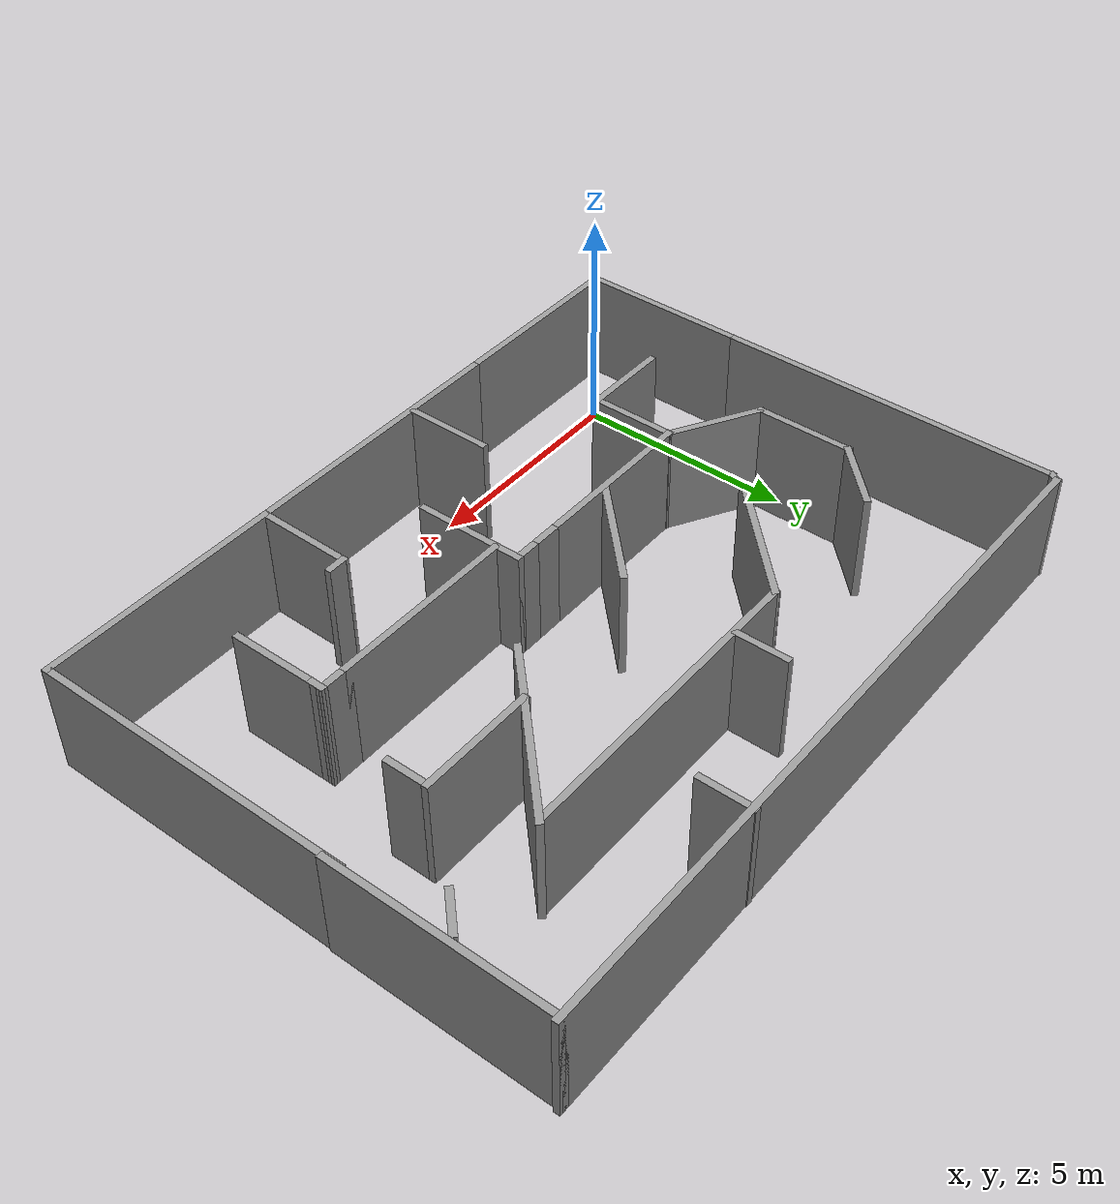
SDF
<?xml version='1.0'?>
<sdf version='1.7'>
  <model name='maze'>
    <pose>6.47293 4.7131 0 0 -0 0</pose>
    <link name='Wall_10'>
      <collision name='Wall_10_Collision'>
        <geometry>
          <box>
            <size>3.9616 0.15 2.5</size>
          </box>
        </geometry>
        <pose>0 0 1.25 0 -0 0</pose>
      </collision>
      <visual name='Wall_10_Visual'>
        <pose>0 0 1.25 0 -0 0</pose>
        <geometry>
          <box>
            <size>3.9616 0.15 2.5</size>
          </box>
        </geometry>
        <material>
          <script>
            <uri>file://media/materials/scripts/gazebo.material</uri>
            <name>Gazebo/Grey</name>
          </script>
          <ambient>1 1 1 1</ambient>
        </material>
        <meta>
          <layer>0</layer>
        </meta>
      </visual>
      <pose>-7.92933 -3.89369 0 0 -0 1.5708</pose>
    </link>
    <link name='Wall_14'>
      <collision name='Wall_14_Collision'>
        <geometry>
          <box>
            <size>6.5 0.15 2.5</size>
          </box>
        </geometry>
        <pose>0 0 1.25 0 -0 0</pose>
      </collision>
      <visual name='Wall_14_Visual'>
        <pose>0 0 1.25 0 -0 0</pose>
        <geometry>
          <box>
            <size>6.5 0.15 2.5</size>
          </box>
        </geometry>
        <material>
          <script>
            <uri>file://media/materials/scripts/gazebo.material</uri>
            <name>Gazebo/Grey</name>
          </script>
          <ambient>1 1 1 1</ambient>
        </material>
        <meta>
          <layer>0</layer>
        </meta>
      </visual>
      <pose>-0.654331 -5.79949 0 0 -0 0</pose>
    </link>
    <link name='Wall_15'>
      <collision name='Wall_15_Collision'>
        <geometry>
          <box>
            <size>2.2418 0.15 2.5</size>
          </box>
        </geometry>
        <pose>0 0 1.25 0 -0 0</pose>
      </collision>
      <visual name='Wall_15_Visual'>
        <pose>0 0 1.25 0 -0 0</pose>
        <geometry>
          <box>
            <size>2.2418 0.15 2.5</size>
          </box>
        </geometry>
        <material>
          <script>
            <uri>file://media/materials/scripts/gazebo.material</uri>
            <name>Gazebo/Grey</name>
          </script>
          <ambient>1 1 1 1</ambient>
        </material>
        <meta>
          <layer>0</layer>
        </meta>
      </visual>
      <pose>2.53515 -4.75369 0 0 -0 1.55695</pose>
    </link>
    <link name='Wall_17'>
      <collision name='Wall_17_Collision'>
        <geometry>
          <box>
            <size>2 0.15 2.5</size>
          </box>
        </geometry>
        <pose>0 0 1.25 0 -0 0</pose>
      </collision>
      <visual name='Wall_17_Visual'>
        <pose>0 0 1.25 0 -0 0</pose>
        <geometry>
          <box>
            <size>2 0.15 2.5</size>
          </box>
        </geometry>
        <material>
          <script>
            <uri>file://media/materials/scripts/gazebo.material</uri>
            <name>Gazebo/Grey</name>
          </script>
          <ambient>1 1 1 1</ambient>
        </material>
        <meta>
          <layer>0</layer>
        </meta>
      </visual>
      <pose>-5.26776 -2.96823 0 0 -0 0</pose>
    </link>
    <link name='Wall_19'>
      <collision name='Wall_19_Collision'>
        <geometry>
          <box>
            <size>1.98933 0.15 2.5</size>
          </box>
        </geometry>
        <pose>0 0 1.25 0 -0 0</pose>
      </collision>
      <visual name='Wall_19_Visual'>
        <pose>0 0 1.25 0 -0 0</pose>
        <geometry>
          <box>
            <size>1.98933 0.15 2.5</size>
          </box>
        </geometry>
        <material>
          <script>
            <uri>file://media/materials/scripts/gazebo.material</uri>
            <name>Gazebo/Grey</name>
          </script>
          <ambient>1 1 1 1</ambient>
        </material>
        <meta>
          <layer>0</layer>
        </meta>
      </visual>
      <pose>-4.32954 -2.06179 0 0 -0 1.5708</pose>
    </link>
    <link name='Wall_20'>
      <collision name='Wall_20_Collision'>
        <geometry>
          <box>
            <size>3.75 0.15 2.5</size>
          </box>
        </geometry>
        <pose>0 0 1.25 0 -0 0</pose>
      </collision>
      <visual name='Wall_20_Visual'>
        <pose>0 0 1.25 0 -0 0</pose>
        <geometry>
          <box>
            <size>3.75 0.15 2.5</size>
          </box>
        </geometry>
        <material>
          <script>
            <uri>file://media/materials/scripts/gazebo.material</uri>
            <name>Gazebo/Grey</name>
          </script>
          <ambient>1 1 1 1</ambient>
        </material>
        <meta>
          <layer>0</layer>
        </meta>
      </visual>
      <pose>-2.51631 -1.15535 0 0 -0 0</pose>
    </link>
    <link name='Wall_22'>
      <collision name='Wall_22_Collision'>
        <geometry>
          <box>
            <size>2 0.15 2.5</size>
          </box>
        </geometry>
        <pose>0 0 1.25 0 -0 0</pose>
      </collision>
      <visual name='Wall_22_Visual'>
        <pose>0 0 1.25 0 -0 0</pose>
        <geometry>
          <box>
            <size>2 0.15 2.5</size>
          </box>
        </geometry>
        <material>
          <script>
            <uri>file://media/materials/scripts/gazebo.material</uri>
            <name>Gazebo/Grey</name>
          </script>
          <ambient>1 1 1 1</ambient>
        </material>
        <meta>
          <layer>0</layer>
        </meta>
      </visual>
      <pose>-1.69825 -4.80527 0 0 -0 1.5708</pose>
    </link>
    <link name='Wall_24'>
      <collision name='Wall_24_Collision'>
        <geometry>
          <box>
            <size>0.75 0.15 2.5</size>
          </box>
        </geometry>
        <pose>0 0 1.25 0 -0 0</pose>
      </collision>
      <visual name='Wall_24_Visual'>
        <pose>0 0 1.25 0 -0 0</pose>
        <geometry>
          <box>
            <size>0.75 0.15 2.5</size>
          </box>
        </geometry>
        <material>
          <script>
            <uri>file://media/materials/scripts/gazebo.material</uri>
            <name>Gazebo/Grey</name>
          </script>
          <ambient>1 1 1 1</ambient>
        </material>
        <meta>
          <layer>0</layer>
        </meta>
      </visual>
      <pose>-0.416314 -1.15535 0 0 -0 0</pose>
    </link>
    <link name='Wall_25'>
      <collision name='Wall_25_Collision'>
        <geometry>
          <box>
            <size>0.75 0.15 2.5</size>
          </box>
        </geometry>
        <pose>0 0 1.25 0 -0 0</pose>
      </collision>
      <visual name='Wall_25_Visual'>
        <pose>0 0 1.25 0 -0 0</pose>
        <geometry>
          <box>
            <size>0.75 0.15 2.5</size>
          </box>
        </geometry>
        <material>
          <script>
            <uri>file://media/materials/scripts/gazebo.material</uri>
            <name>Gazebo/Grey</name>
          </script>
          <ambient>1 1 1 1</ambient>
        </material>
        <meta>
          <layer>0</layer>
        </meta>
      </visual>
      <pose>0.183686 -1.15535 0 0 -0 0</pose>
    </link>
    <link name='Wall_26'>
      <collision name='Wall_26_Collision'>
        <geometry>
          <box>
            <size>2.5 0.15 2.5</size>
          </box>
        </geometry>
        <pose>0 0 1.25 0 -0 0</pose>
      </collision>
      <visual name='Wall_26_Visual'>
        <pose>0 0 1.25 0 -0 0</pose>
        <geometry>
          <box>
            <size>2.5 0.15 2.5</size>
          </box>
        </geometry>
        <material>
          <script>
            <uri>file://media/materials/scripts/gazebo.material</uri>
            <name>Gazebo/Grey</name>
          </script>
          <ambient>1 1 1 1</ambient>
        </material>
        <meta>
          <layer>0</layer>
        </meta>
      </visual>
      <pose>0.483686 -2.33035 0 0 -0 -1.5708</pose>
    </link>
    <link name='Wall_29'>
      <collision name='Wall_29_Collision'>
        <geometry>
          <box>
            <size>4.25011 0.15 2.5</size>
          </box>
        </geometry>
        <pose>0 0 1.25 0 -0 0</pose>
      </collision>
      <visual name='Wall_29_Visual'>
        <pose>0 0 1.25 0 -0 0</pose>
        <geometry>
          <box>
            <size>4.25011 0.15 2.5</size>
          </box>
        </geometry>
        <material>
          <script>
            <uri>file://media/materials/scripts/gazebo.material</uri>
            <name>Gazebo/Grey</name>
          </script>
          <ambient>1 1 1 1</ambient>
        </material>
        <meta>
          <layer>0</layer>
        </meta>
      </visual>
      <pose>2.56394 -1.68717 0 0 -0 0</pose>
    </link>
    <link name='Wall_32'>
      <collision name='Wall_32_Collision'>
        <geometry>
          <box>
            <size>0.5 0.15 2.5</size>
          </box>
        </geometry>
        <pose>0 0 1.25 0 -0 0</pose>
      </collision>
      <visual name='Wall_32_Visual'>
        <pose>0 0 1.25 0 -0 0</pose>
        <geometry>
          <box>
            <size>0.5 0.15 2.5</size>
          </box>
        </geometry>
        <material>
          <script>
            <uri>file://media/materials/scripts/gazebo.material</uri>
            <name>Gazebo/Grey</name>
          </script>
          <ambient>1 1 1 1</ambient>
        </material>
        <meta>
          <layer>0</layer>
        </meta>
      </visual>
      <pose>2.72463 -3.70789 0 0 -0 0</pose>
    </link>
    <link name='Wall_36'>
      <collision name='Wall_36_Collision'>
        <geometry>
          <box>
            <size>2 0.15 2.5</size>
          </box>
        </geometry>
        <pose>0 0 1.25 0 -0 0</pose>
      </collision>
      <visual name='Wall_36_Visual'>
        <pose>0 0 1.25 0 -0 0</pose>
        <geometry>
          <box>
            <size>2 0.15 2.5</size>
          </box>
        </geometry>
        <material>
          <script>
            <uri>file://media/materials/scripts/gazebo.material</uri>
            <name>Gazebo/Grey</name>
          </script>
          <ambient>1 1 1 1</ambient>
        </material>
        <meta>
          <layer>0</layer>
        </meta>
      </visual>
      <pose>5.21014 -2.84058 0 0 -0 1.5708</pose>
    </link>
    <link name='Wall_39'>
      <collision name='Wall_39_Collision'>
        <geometry>
          <box>
            <size>0.75 0.15 2.5</size>
          </box>
        </geometry>
        <pose>0 0 1.25 0 -0 0</pose>
      </collision>
      <visual name='Wall_39_Visual'>
        <pose>0 0 1.25 0 -0 0</pose>
        <geometry>
          <box>
            <size>0.75 0.15 2.5</size>
          </box>
        </geometry>
        <material>
          <script>
            <uri>file://media/materials/scripts/gazebo.material</uri>
            <name>Gazebo/Grey</name>
          </script>
          <ambient>1 1 1 1</ambient>
        </material>
        <meta>
          <layer>0</layer>
        </meta>
      </visual>
      <pose>4.91394 -1.68717 0 0 -0 0</pose>
    </link>
    <link name='Wall_40'>
      <collision name='Wall_40_Collision'>
        <geometry>
          <box>
            <size>0.378442 0.15 2.5</size>
          </box>
        </geometry>
        <pose>0 0 1.25 0 -0 0</pose>
      </collision>
      <visual name='Wall_40_Visual'>
        <pose>0 0 1.25 0 -0 0</pose>
        <geometry>
          <box>
            <size>0.378442 0.15 2.5</size>
          </box>
        </geometry>
        <material>
          <script>
            <uri>file://media/materials/scripts/gazebo.material</uri>
            <name>Gazebo/Grey</name>
          </script>
          <ambient>1 1 1 1</ambient>
        </material>
        <meta>
          <layer>0</layer>
        </meta>
      </visual>
      <pose>5.21204 -1.80137 0 0 -0 -1.58743</pose>
    </link>
    <link name='Wall_42'>
      <collision name='Wall_42_Collision'>
        <geometry>
          <box>
            <size>5.5 0.15 2.5</size>
          </box>
        </geometry>
        <pose>0 0 1.25 0 -0 0</pose>
      </collision>
      <visual name='Wall_42_Visual'>
        <pose>0 0 1.25 0 -0 0</pose>
        <geometry>
          <box>
            <size>5.5 0.15 2.5</size>
          </box>
        </geometry>
        <material>
          <script>
            <uri>file://media/materials/scripts/gazebo.material</uri>
            <name>Gazebo/Grey</name>
          </script>
          <ambient>1 1 1 1</ambient>
        </material>
        <meta>
          <layer>0</layer>
        </meta>
      </visual>
      <pose>5.19567 -5.79949 0 0 -0 0</pose>
    </link>
    <link name='Wall_43'>
      <collision name='Wall_43_Collision'>
        <geometry>
          <box>
            <size>7.21948 0.15 2.5</size>
          </box>
        </geometry>
        <pose>0 0 1.25 0 -0 0</pose>
      </collision>
      <visual name='Wall_43_Visual'>
        <pose>0 0 1.25 0 -0 0</pose>
        <geometry>
          <box>
            <size>7.21948 0.15 2.5</size>
          </box>
        </geometry>
        <material>
          <script>
            <uri>file://media/materials/scripts/gazebo.material</uri>
            <name>Gazebo/Grey</name>
          </script>
          <ambient>1 1 1 1</ambient>
        </material>
        <meta>
          <layer>0</layer>
        </meta>
      </visual>
      <pose>7.87067 -2.26478 0 0 -0 1.5708</pose>
    </link>
    <link name='Wall_45'>
      <collision name='Wall_45_Collision'>
        <geometry>
          <box>
            <size>1.42931 0.15 2.5</size>
          </box>
        </geometry>
        <pose>0 0 1.25 0 -0 0</pose>
      </collision>
      <visual name='Wall_45_Visual'>
        <pose>0 0 1.25 0 -0 0</pose>
        <geometry>
          <box>
            <size>1.42931 0.15 2.5</size>
          </box>
        </geometry>
        <material>
          <script>
            <uri>file://media/materials/scripts/gazebo.material</uri>
            <name>Gazebo/Grey</name>
          </script>
          <ambient>1 1 1 1</ambient>
        </material>
        <meta>
          <layer>0</layer>
        </meta>
      </visual>
      <pose>2.77024 0.796353 0 0 -0 -2.36032</pose>
    </link>
    <link name='Wall_48'>
      <collision name='Wall_48_Collision'>
        <geometry>
          <box>
            <size>2.75 0.15 2.5</size>
          </box>
        </geometry>
        <pose>0 0 1.25 0 -0 0</pose>
      </collision>
      <visual name='Wall_48_Visual'>
        <pose>0 0 1.25 0 -0 0</pose>
        <geometry>
          <box>
            <size>2.75 0.15 2.5</size>
          </box>
        </geometry>
        <material>
          <script>
            <uri>file://media/materials/scripts/gazebo.material</uri>
            <name>Gazebo/Grey</name>
          </script>
          <ambient>1 1 1 1</ambient>
        </material>
        <meta>
          <layer>0</layer>
        </meta>
      </visual>
      <pose>-1.24652 -0.203594 0 0 -0 0.785398</pose>
    </link>
    <link name='Wall_50'>
      <collision name='Wall_50_Collision'>
        <geometry>
          <box>
            <size>2.93558 0.15 2.5</size>
          </box>
        </geometry>
        <pose>0 0 1.25 0 -0 0</pose>
      </collision>
      <visual name='Wall_50_Visual'>
        <pose>0 0 1.25 0 -0 0</pose>
        <geometry>
          <box>
            <size>2.93558 0.15 2.5</size>
          </box>
        </geometry>
        <material>
          <script>
            <uri>file://media/materials/scripts/gazebo.material</uri>
            <name>Gazebo/Grey</name>
          </script>
          <ambient>1 1 1 1</ambient>
        </material>
        <meta>
          <layer>0</layer>
        </meta>
      </visual>
      <pose>4.21902 2.22178 0 0 -0 0.775435</pose>
    </link>
    <link name='Wall_53'>
      <collision name='Wall_53_Collision'>
        <geometry>
          <box>
            <size>3.25 0.15 2.5</size>
          </box>
        </geometry>
        <pose>0 0 1.25 0 -0 0</pose>
      </collision>
      <visual name='Wall_53_Visual'>
        <pose>0 0 1.25 0 -0 0</pose>
        <geometry>
          <box>
            <size>3.25 0.15 2.5</size>
          </box>
        </geometry>
        <material>
          <script>
            <uri>file://media/materials/scripts/gazebo.material</uri>
            <name>Gazebo/Grey</name>
          </script>
          <ambient>1 1 1 1</ambient>
        </material>
        <meta>
          <layer>0</layer>
        </meta>
      </visual>
      <pose>-2.79916 2.08344 0 0 -0 -2.35619</pose>
    </link>
    <link name='Wall_55'>
      <collision name='Wall_55_Collision'>
        <geometry>
          <box>
            <size>2.25 0.15 2.5</size>
          </box>
        </geometry>
        <pose>0 0 1.25 0 -0 0</pose>
      </collision>
      <visual name='Wall_55_Visual'>
        <pose>0 0 1.25 0 -0 0</pose>
        <geometry>
          <box>
            <size>2.25 0.15 2.5</size>
          </box>
        </geometry>
        <material>
          <script>
            <uri>file://media/materials/scripts/gazebo.material</uri>
            <name>Gazebo/Grey</name>
          </script>
          <ambient>1 1 1 1</ambient>
        </material>
        <meta>
          <layer>0</layer>
        </meta>
      </visual>
      <pose>-5.22564 -0.630351 0 0 -0 2.61799</pose>
    </link>
    <link name='Wall_56'>
      <collision name='Wall_56_Collision'>
        <geometry>
          <box>
            <size>2.25 0.15 2.5</size>
          </box>
        </geometry>
        <pose>0 0 1.25 0 -0 0</pose>
      </collision>
      <visual name='Wall_56_Visual'>
        <pose>0 0 1.25 0 -0 0</pose>
        <geometry>
          <box>
            <size>2.25 0.15 2.5</size>
          </box>
        </geometry>
        <material>
          <script>
            <uri>file://media/materials/scripts/gazebo.material</uri>
            <name>Gazebo/Grey</name>
          </script>
          <ambient>1 1 1 1</ambient>
        </material>
        <meta>
          <layer>0</layer>
        </meta>
      </visual>
      <pose>-6.13497 0.944649 0 0 -0 1.5708</pose>
    </link>
    <link name='Wall_57'>
      <collision name='Wall_57_Collision'>
        <geometry>
          <box>
            <size>1.75 0.15 2.5</size>
          </box>
        </geometry>
        <pose>0 0 1.25 0 -0 0</pose>
      </collision>
      <visual name='Wall_57_Visual'>
        <pose>0 0 1.25 0 -0 0</pose>
        <geometry>
          <box>
            <size>1.75 0.15 2.5</size>
          </box>
        </geometry>
        <material>
          <script>
            <uri>file://media/materials/scripts/gazebo.material</uri>
            <name>Gazebo/Grey</name>
          </script>
          <ambient>1 1 1 1</ambient>
        </material>
        <meta>
          <layer>0</layer>
        </meta>
      </visual>
      <pose>-5.56928 2.56033 0 0 -0 0.785398</pose>
    </link>
    <link name='Wall_59'>
      <collision name='Wall_59_Collision'>
        <geometry>
          <box>
            <size>7 0.15 2.5</size>
          </box>
        </geometry>
        <pose>0 0 1.25 0 -0 0</pose>
      </collision>
      <visual name='Wall_59_Visual'>
        <pose>0 0 1.25 0 -0 0</pose>
        <geometry>
          <box>
            <size>7 0.15 2.5</size>
          </box>
        </geometry>
        <material>
          <script>
            <uri>file://media/materials/scripts/gazebo.material</uri>
            <name>Gazebo/Grey</name>
          </script>
          <ambient>1 1 1 1</ambient>
        </material>
        <meta>
          <layer>0</layer>
        </meta>
      </visual>
      <pose>1.72186 3.17946 0 0 -0 0</pose>
    </link>
    <link name='Wall_61'>
      <collision name='Wall_61_Collision'>
        <geometry>
          <box>
            <size>2.67481 0.15 2.5</size>
          </box>
        </geometry>
        <pose>0 0 1.25 0 -0 0</pose>
      </collision>
      <visual name='Wall_61_Visual'>
        <pose>0 0 1.25 0 -0 0</pose>
        <geometry>
          <box>
            <size>2.67481 0.15 2.5</size>
          </box>
        </geometry>
        <material>
          <script>
            <uri>file://media/materials/scripts/gazebo.material</uri>
            <name>Gazebo/Grey</name>
          </script>
          <ambient>1 1 1 1</ambient>
        </material>
        <meta>
          <layer>0</layer>
        </meta>
      </visual>
      <pose>4.48644 1.24679 0 0 -0 0</pose>
    </link>
    <link name='Wall_62'>
      <collision name='Wall_62_Collision'>
        <geometry>
          <box>
            <size>1 0.15 2.5</size>
          </box>
        </geometry>
        <pose>0 0 1.25 0 -0 0</pose>
      </collision>
      <visual name='Wall_62_Visual'>
        <pose>0 0 1.25 0 -0 0</pose>
        <geometry>
          <box>
            <size>1 0.15 2.5</size>
          </box>
        </geometry>
        <material>
          <script>
            <uri>file://media/materials/scripts/gazebo.material</uri>
            <name>Gazebo/Grey</name>
          </script>
          <ambient>1 1 1 1</ambient>
        </material>
        <meta>
          <layer>0</layer>
        </meta>
      </visual>
      <pose>5.74847 0.791199 0 0 -0 -1.5708</pose>
    </link>
    <link name='Wall_65'>
      <collision name='Wall_65_Collision'>
        <geometry>
          <box>
            <size>15.9346 0.15 2.5</size>
          </box>
        </geometry>
        <pose>0 0 1.25 0 -0 0</pose>
      </collision>
      <visual name='Wall_65_Visual'>
        <pose>0 0 1.25 0 -0 0</pose>
        <geometry>
          <box>
            <size>15.9346 0.15 2.5</size>
          </box>
        </geometry>
        <material>
          <script>
            <uri>file://media/materials/scripts/gazebo.material</uri>
            <name>Gazebo/Grey</name>
          </script>
          <ambient>1 1 1 1</ambient>
        </material>
        <meta>
          <layer>0</layer>
        </meta>
      </visual>
      <pose>0.065685 5.77187 0 0 -0 0</pose>
    </link>
    <link name='Wall_66'>
      <collision name='Wall_66_Collision'>
        <geometry>
          <box>
            <size>0.15 0.15 2.5</size>
          </box>
        </geometry>
        <pose>0 0 1.25 0 -0 0</pose>
      </collision>
      <visual name='Wall_66_Visual'>
        <pose>0 0 1.25 0 -0 0</pose>
        <geometry>
          <box>
            <size>0.15 0.15 2.5</size>
          </box>
        </geometry>
        <material>
          <script>
            <uri>file://media/materials/scripts/gazebo.material</uri>
            <name>Gazebo/Grey</name>
          </script>
          <ambient>1 1 1 1</ambient>
        </material>
        <meta>
          <layer>0</layer>
        </meta>
      </visual>
      <pose>7.95798 5.77187 0 0 -0 0</pose>
    </link>
    <link name='Wall_67'>
      <collision name='Wall_67_Collision'>
        <geometry>
          <box>
            <size>5 0.15 2.5</size>
          </box>
        </geometry>
        <pose>0 0 1.25 0 -0 0</pose>
      </collision>
      <visual name='Wall_67_Visual'>
        <pose>0 0 1.25 0 -0 0</pose>
        <geometry>
          <box>
            <size>5 0.15 2.5</size>
          </box>
        </geometry>
        <material>
          <script>
            <uri>file://media/materials/scripts/gazebo.material</uri>
            <name>Gazebo/Grey</name>
          </script>
          <ambient>1 1 1 1</ambient>
        </material>
        <meta>
          <layer>0</layer>
        </meta>
      </visual>
      <pose>7.89645 3.34687 0 0 -0 -1.5708</pose>
    </link>
    <link name='Wall_69'>
      <collision name='Wall_69_Collision'>
        <geometry>
          <box>
            <size>1.25 0.15 2.5</size>
          </box>
        </geometry>
        <pose>0 0 1.25 0 -0 0</pose>
      </collision>
      <visual name='Wall_69_Visual'>
        <pose>0 0 1.25 0 -0 0</pose>
        <geometry>
          <box>
            <size>1.25 0.15 2.5</size>
          </box>
        </geometry>
        <material>
          <script>
            <uri>file://media/materials/scripts/gazebo.material</uri>
            <name>Gazebo/Grey</name>
          </script>
          <ambient>1 1 1 1</ambient>
        </material>
        <meta>
          <layer>0</layer>
        </meta>
      </visual>
      <pose>2.8396 5.24216 0 0 -0 -1.5708</pose>
    </link>
    <link name='Wall_73'>
      <collision name='Wall_73_Collision'>
        <geometry>
          <box>
            <size>1.25 0.15 2.5</size>
          </box>
        </geometry>
        <pose>0 0 1.25 0 -0 0</pose>
      </collision>
      <visual name='Wall_73_Visual'>
        <pose>0 0 1.25 0 -0 0</pose>
        <geometry>
          <box>
            <size>1.25 0.15 2.5</size>
          </box>
        </geometry>
        <material>
          <script>
            <uri>file://media/materials/scripts/gazebo.material</uri>
            <name>Gazebo/Grey</name>
          </script>
          <ambient>1 1 1 1</ambient>
        </material>
        <meta>
          <layer>0</layer>
        </meta>
      </visual>
      <pose>-0.37193 3.77557 0 0 -0 1.5708</pose>
    </link>
    <link name='Wall_75'>
      <collision name='Wall_75_Collision'>
        <geometry>
          <box>
            <size>7.75 0.15 2.5</size>
          </box>
        </geometry>
        <pose>0 0 1.25 0 -0 0</pose>
      </collision>
      <visual name='Wall_75_Visual'>
        <pose>0 0 1.25 0 -0 0</pose>
        <geometry>
          <box>
            <size>7.75 0.15 2.5</size>
          </box>
        </geometry>
        <material>
          <script>
            <uri>file://media/materials/scripts/gazebo.material</uri>
            <name>Gazebo/Grey</name>
          </script>
          <ambient>1 1 1 1</ambient>
        </material>
        <meta>
          <layer>0</layer>
        </meta>
      </visual>
      <pose>-7.92933 1.81211 0 0 -0 1.5708</pose>
    </link>
    <link name='Wall_76'>
      <collision name='Wall_76_Collision'>
        <geometry>
          <box>
            <size>0.339938 0.15 2.5</size>
          </box>
        </geometry>
        <pose>0 0 1.25 0 -0 0</pose>
      </collision>
      <visual name='Wall_76_Visual'>
        <pose>0 0 1.25 0 -0 0</pose>
        <geometry>
          <box>
            <size>0.339938 0.15 2.5</size>
          </box>
        </geometry>
        <material>
          <script>
            <uri>file://media/materials/scripts/gazebo.material</uri>
            <name>Gazebo/Grey</name>
          </script>
          <ambient>1 1 1 1</ambient>
        </material>
        <meta>
          <layer>0</layer>
        </meta>
      </visual>
      <pose>-7.87797 5.69199 0 0 -0 0.999373</pose>
    </link>
    <link name='Wall_78'>
      <collision name='Wall_78_Collision'>
        <geometry>
          <box>
            <size>1 0.15 2.5</size>
          </box>
        </geometry>
        <pose>0 0 1.25 0 -0 0</pose>
      </collision>
      <visual name='Wall_78_Visual'>
        <pose>0 0 1.25 0 -0 0</pose>
        <geometry>
          <box>
            <size>1 0.15 2.5</size>
          </box>
        </geometry>
        <material>
          <script>
            <uri>file://media/materials/scripts/gazebo.material</uri>
            <name>Gazebo/Grey</name>
          </script>
          <ambient>1 1 1 1</ambient>
        </material>
        <meta>
          <layer>0</layer>
        </meta>
      </visual>
      <pose>7.45339 3.2542 0 0 -0 -2.35619</pose>
    </link>
    <link name='Wall_8'>
      <collision name='Wall_8_Collision'>
        <geometry>
          <box>
            <size>4.25 0.15 2.5</size>
          </box>
        </geometry>
        <pose>0 0 1.25 0 -0 0</pose>
      </collision>
      <visual name='Wall_8_Visual'>
        <pose>0 0 1.25 0 -0 0</pose>
        <geometry>
          <box>
            <size>4.25 0.15 2.5</size>
          </box>
        </geometry>
        <material>
          <script>
            <uri>file://media/materials/scripts/gazebo.material</uri>
            <name>Gazebo/Grey</name>
          </script>
          <ambient>1 1 1 1</ambient>
        </material>
        <meta>
          <layer>0</layer>
        </meta>
      </visual>
      <pose>-5.87933 -5.79949 0 0 -0 0</pose>
    </link>
    <static>1</static>
  </model>
</sdf>
